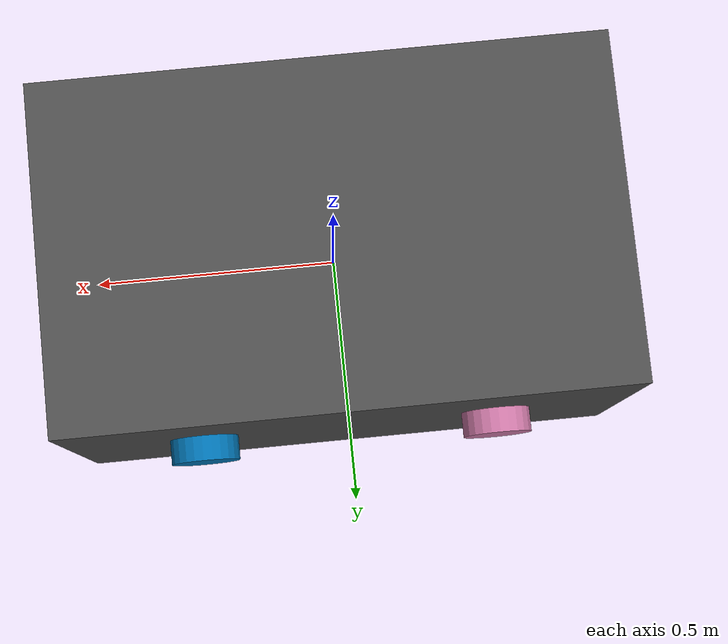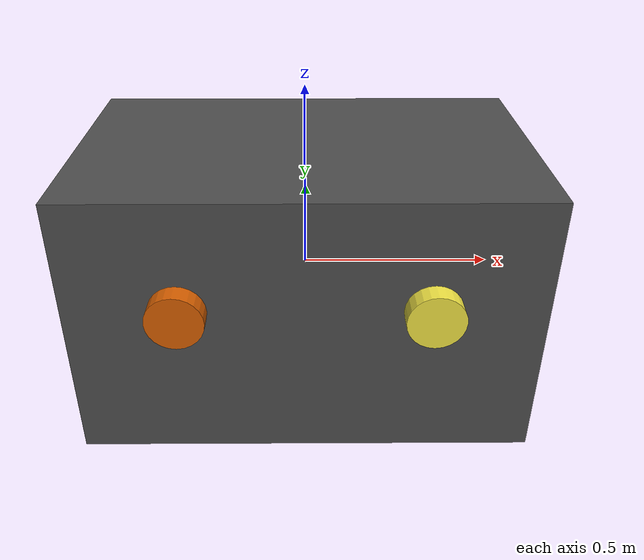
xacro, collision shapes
<?xml version="1.0"?>
<robot xmlns:xacro="http://www.ros.org/wiki/xacro" name="robot">
  <xacro:property name="mesh_path" value="$(find polebot_amr_description)/meshes"/>
  <link name="base_footprint"/>

  <link name="base_link"/>

  <joint name="base_footprint_joint" type="fixed">
    <parent link="base_footprint"/>
    <child link="base_link"/>
    <origin xyz="0 0 0" rpy="0 0 -1.57"/>
  </joint>

  <link name="chassis">
    <visual>
      <origin xyz="0 0 0" rpy="0 0 1.57"/>
      <geometry>
        <mesh filename="file://${mesh_path}/polebot_amr.stl" scale="0.001 0.001 0.001"/>
      </geometry>
      <material name="gray">
        <color rgba="0.3 0.3 0.3 1.0"/>
      </material>
    </visual>
    <collision>
      <origin xyz="0 0 0" rpy="0 0 0"/>
      <geometry>
        <box size="0.7 1.15 0.7"/>
      </geometry>
    </collision>
    <inertial>
      <origin xyz="0 0 0.35" rpy="0 0 0"/>
      <mass value="5.0"/> <!-- Poids réduit pour répartir avec roues -->
      <!-- Inertie recalculée de manière approximative -->
      <inertia ixx="0.41" ixy="0" ixz="0" iyy="0.755" iyz="0" izz="0.755"/>
    </inertial>
  </link>

  <joint name="base_joint" type="fixed">
    <parent link="base_link"/>
    <child link="chassis"/>
    <origin xyz="0 0 0" rpy="0 0 0"/>
  </joint>

  <link name="left_wheel">
    <inertial>
      <origin xyz="0 0 0" rpy="0 0 0"/>
      <mass value="1.5"/> <!-- ↖ Plus lourd -->
      <inertia
        ixx="0.003" ixy="0.0" ixz="0.0"
        iyy="0.003" iyz="0.0"
        izz="0.002"/>
    </inertial>
    <collision>
      <geometry>
        <cylinder radius="0.07" length="0.05"/>
      </geometry>
      <origin xyz="0 0 0" rpy="0 0 0"/>
      <surface>
        <friction>
          <ode>
            <mu>1.0</mu>
            <mu2>0.0</mu2>
          </ode>
        </friction>
      </surface>
    </collision>
  </link>

  <joint name="left_wheel_joint" type="continuous">
    <parent link="base_link"/>
    <child link="left_wheel"/>
    <origin xyz="0.375 0.3 0.07" rpy="1.57 0 1.57"/> <!-- Position à adapter -->
    <axis xyz="0 -1 0">
        <dynamics damping="1.0" friction="0.5"/>  <!-- Ajout ici -->
    </axis>
  </joint>

   <link name="right_wheel">
    <inertial>
      <origin xyz="0 0 0" rpy="0 0 0"/>
      <mass value="1.5"/> <!-- ↖ Plus lourd -->
      <inertia
        ixx="0.003" ixy="0.0" ixz="0.0"
        iyy="0.003" iyz="0.0"
        izz="0.002"/>
    </inertial>
    <collision>
      <geometry>
        <cylinder radius="0.07" length="0.05"/>
      </geometry>
      <origin xyz="0 0 0" rpy="0 0 0"/>
      <surface>
        <friction>
          <ode>
            <mu>1.0</mu>
            <mu2>0.0</mu2>
          </ode>
        </friction>
      </surface>
    </collision>
  </link>

  <joint name="right_wheel_joint" type="continuous">
    <parent link="base_link"/>
    <child link="right_wheel"/>
    <origin xyz="-0.375 0.3 0.07" rpy="1.57 0 1.57"/> <!-- Position à adapter -->
    <axis xyz="0 -1 0">
        <dynamics damping="1.0" friction="0.5"/>  <!-- Ajout ici -->
    </axis>
  </joint>

  <link name="front_left_caster">
    <inertial>
      <mass value="1.5"/>
      <inertia ixx="0.41" ixy="0" ixz="0" iyy="0.755" iyz="0" izz="0.755"/>
    </inertial>
    <collision>
      <geometry>
        <cylinder radius="0.07" length="0.05"/>
      </geometry>
      <origin xyz="0 0 0" rpy="0 0 0"/>
      <surface>
        <friction>
          <ode>
            <mu>1.0</mu>
            <mu2>0.0</mu2>
          </ode>
        </friction>
      </surface>
    </collision>
  </link>

  <joint name="front_left_caster_joint" type="continuous">
    <parent link="base_link"/>
    <child link="front_left_caster"/>
    <origin xyz="0.375 -0.3 0.07" rpy="1.57 0 1.57"/> <!-- Position adaptée -->
    <axis xyz="0 -1 0"/>
  </joint>

  <link name="front_right_caster">
    <inertial>
      <mass value="1.5"/>
      <inertia ixx="0.41" ixy="0" ixz="0" iyy="0.755" iyz="0" izz="0.755"/>
    </inertial>
    <collision>
      <geometry>
        <cylinder radius="0.07" length="0.05"/>
      </geometry>
      <origin xyz="0 0 0" rpy="0 0 0"/>
      <surface>
        <friction>
          <ode>
            <mu>1.0</mu>
            <mu2>0.0</mu2>
          </ode>
        </friction>
      </surface>
    </collision>
  </link>

  <joint name="front_right_caster_joint" type="continuous">
    <parent link="base_link"/>
    <child link="front_right_caster"/>
    <origin xyz="-0.375 -0.3 0.07" rpy="1.57 0 1.57"/> <!-- Position adaptée -->
    <axis xyz="0 -1 0"/>
  </joint>

</robot>
